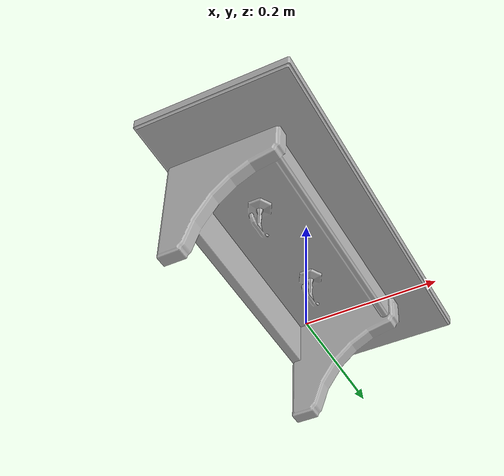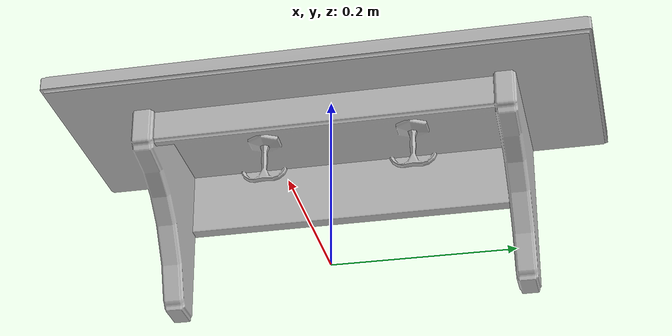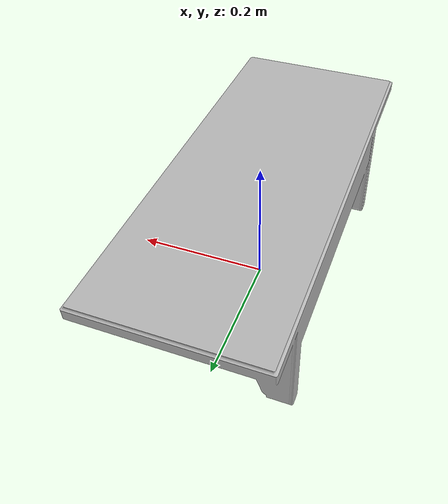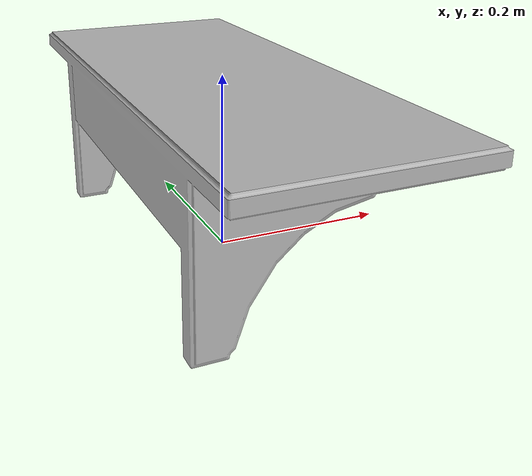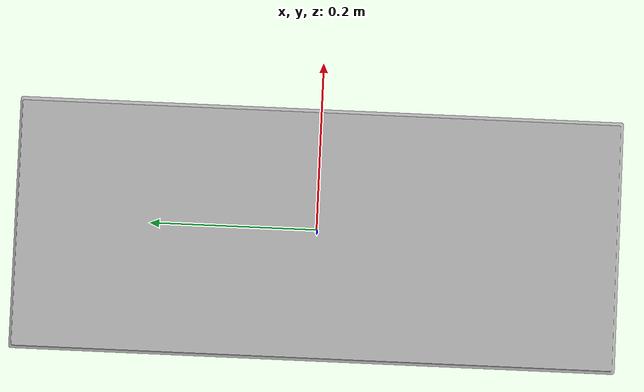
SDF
<?xml version='1.0'?>
<sdf version='1.4'>
  <model name='s__876'>
    <pose>0 0 0 0 0 0</pose>
    <static>true</static>
    <link name='link'>
      <collision name='collision'>
        <pose>0 0 0 0 0 0</pose>
        <geometry>
          <box>
            <size>0.25 0.6 2</size>
          </box>
        </geometry>
      </collision>
      <visual name='visual'>
        <pose>0 0 0 0 0 0</pose>
        <geometry>
          <mesh><uri>model://s__876/s__876.dae</uri></mesh>
        </geometry>
      </visual>
    </link>
  </model>
</sdf>
